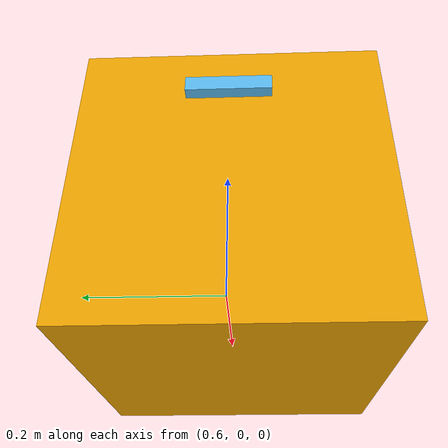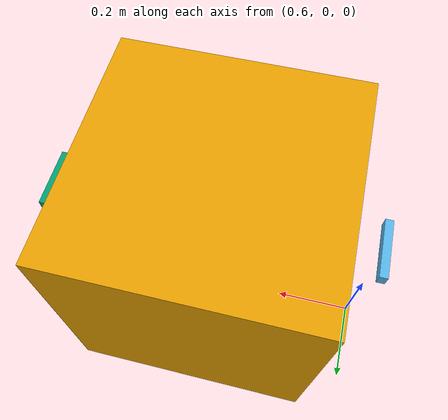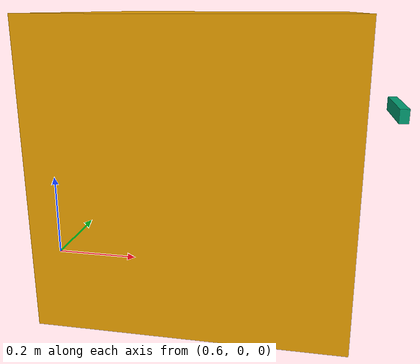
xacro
<?xml version="1.0"?>
<robot name="box_with_handles" xmlns:xacro="http://www.ros.org/wiki/xacro">
  <!-- Define properties -->
  <xacro:property name="box_mass" value="1"/>
  <xacro:property name="box_size" value="0.6"/>
  <xacro:property name="handle_thickness" value="0.02"/>
  <xacro:property name="handle_length" value="0.15"/>
  <xacro:property name="handle_width" value="0.03"/>
  <xacro:property name="handle_offset" value="0.4"/>

  <!-- Box link -->
  <link name="box">
    <inertial>
      <mass value="${box_mass}"/>
      <origin xyz="1 0 0.3" rpy="0 0 0"/>
      <inertia ixx="0.01" ixy="0.0" ixz="0.0" iyy="0.01" iyz="0.0" izz="0.01"/>
    </inertial>
    <visual>
      <geometry>
        <box size="${box_size} ${box_size} ${box_size}"/>
      </geometry>
      <origin xyz="1 0 0.3" rpy="0 0 0"/>
    </visual>
    <collision>
      <geometry>
        <box size="${box_size} ${box_size} ${box_size}"/>
      </geometry>
      <origin xyz="1 0 0.3" rpy="0 0 0"/>
    </collision>
  </link>

  <!-- Left handle -->
  <link name="left_handle">
    <inertial>
      <mass value="0.01"/>
      <origin xyz="1 0 0.3" rpy="0 0 0"/>
      <inertia ixx="0.001" ixy="0.0" ixz="0.0" iyy="0.001" iyz="0.0" izz="0.001"/>
    </inertial>
    <visual>
      <geometry>
        <box size="${handle_thickness} ${handle_length} ${handle_width}"/>
      </geometry>
      <origin xyz="1 0 0.3" rpy="0 0 0"/>
    </visual>
    <collision>
      <geometry>
        <box size="${handle_thickness} ${handle_length} ${handle_width}"/>
      </geometry>
      <origin xyz="1 0 0.3" rpy="0 0 0"/>
    </collision>
  </link>

  <!-- Right handle -->
  <link name="right_handle">
    <inertial>
      <mass value="0.01"/>
      <origin xyz="1 0 0.3" rpy="0 0 0"/>
      <inertia ixx="0.001" ixy="0.0" ixz="0.0" iyy="0.001" iyz="0.0" izz="0.001"/>
    </inertial>
    <visual>
      <geometry>
        <box size="${handle_thickness} ${handle_length} ${handle_width}"/>
      </geometry>
      <origin xyz="1 0 0.3" rpy="0 0 0"/>
    </visual>
    <collision>
      <geometry>
        <box size="${handle_thickness} ${handle_length} ${handle_width}"/>
      </geometry>
      <origin xyz="1 0 0.3" rpy="0 0 0"/>
    </collision>
  </link>

  <!-- Joints -->
  <joint name="left_handle_joint" type="fixed">
    <parent link="box"/>
    <child link="left_handle"/>
    <origin xyz="${-handle_offset} 0 0.1" rpy="0 0 0"/>
    <dynamics friction="0.8"/>
  </joint>

  <joint name="right_handle_joint" type="fixed">
    <parent link="box"/>
    <child link="right_handle"/>
    <origin xyz="${handle_offset} 0 0.1" rpy="0 0 0"/>
    <dynamics friction="0.8"/>
  </joint>
</robot>
